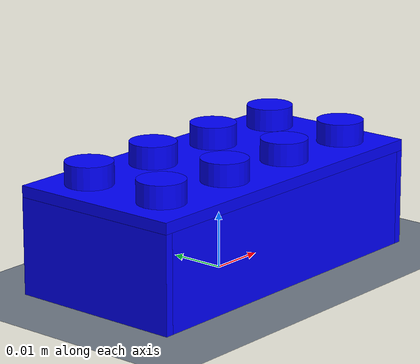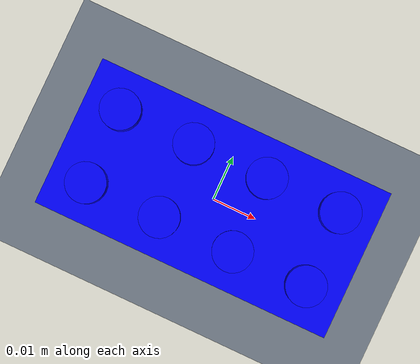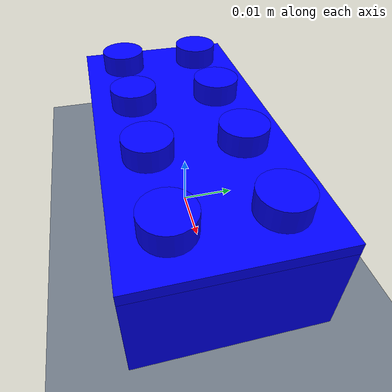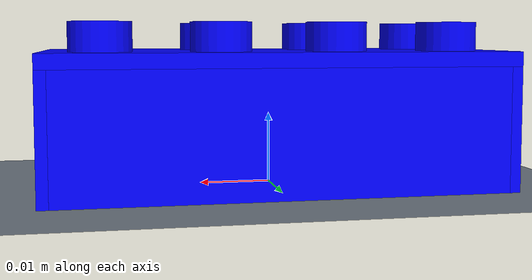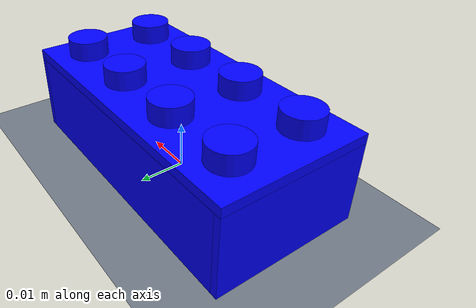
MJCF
<mujoco model="brick_4x2">
  <compiler angle="radian" autolimits="true" />
  <option timestep=".0005" integrator="implicitfast" cone="pyramidal" solver="Newton" iterations="100" />
  <worldbody>
    <geom name="floor" type="plane" size=".2 .2 .01" rgba=".44 .48 .53 1" friction="1 .005 .0001" priority="3" solref=".0011 1" solimp=".9999 .9999 .0001" />
    <body name="brick_4x2" quat="1.0000000000 0 0 0.0000000000" pos="0.000000 0.000000 0.018600">
      <freejoint />
      <geom type="mesh" pos="0 0 -0.0004000000000000002" solref=".001 1" solimp=".9999 .9999 .0001" friction="1 .005 .0001" priority="1" mesh="clutch_shell_brick_4x2_0" rgba="0 0 1 1" />
      <geom type="mesh" pos="-0.031149999999999997 0 -0.009999999999999998" solref=".001 1" solimp=".9999 .9999 .0001" friction="1 .005 .0001" priority="1" mesh="clutch_shell_brick_4x2_1" rgba="0 0 1 1" />
      <geom type="mesh" pos="0 -0.01515 -0.009999999999999998" solref=".001 1" solimp=".9999 .9999 .0001" friction="1 .005 .0001" priority="1" mesh="clutch_shell_brick_4x2_2" rgba="0 0 1 1" />
      <geom type="mesh" pos="0.031149999999999997 0 -0.009999999999999998" solref=".001 1" solimp=".9999 .9999 .0001" friction="1 .005 .0001" priority="1" mesh="clutch_shell_brick_4x2_3" rgba="0 0 1 1" />
      <geom type="mesh" pos="0 0.01515 -0.009999999999999998" solref=".001 1" solimp=".9999 .9999 .0001" friction="1 .005 .0001" priority="1" mesh="clutch_shell_brick_4x2_4" rgba="0 0 1 1" />
      <geom type="mesh" pos="-0.009449999999999998 0.0 -0.009999999999999998" solref="0.03 1.0" solimp=".9 .95 .001" friction="0.3 0.001 5e-05" priority="2" euler="0 0 0.0" name="clutch_brick_4x2_tube_5" mesh="clutch_tube" condim="6" rgba="0 0 1 1" />
      <geom type="mesh" pos="-0.009948589062051073 0.0025065764819913383 -0.009999999999999998" solref="0.03 1.0" solimp=".9 .95 .001" friction="0.3 0.001 5e-05" priority="2" euler="0 0 0.39269908169872414" name="clutch_brick_4x2_tube_6" mesh="clutch_tube" condim="6" rgba="0 0 1 1" />
      <geom type="mesh" pos="-0.011368450583228114 0.004631549416771886 -0.009999999999999998" solref="0.03 1.0" solimp=".9 .95 .001" friction="0.3 0.001 5e-05" priority="2" euler="0 0 0.7853981633974483" name="clutch_brick_4x2_tube_7" mesh="clutch_tube" condim="6" rgba="0 0 1 1" />
      <geom type="mesh" pos="-0.013493423518008661 0.006051410937948928 -0.009999999999999998" solref="0.03 1.0" solimp=".9 .95 .001" friction="0.3 0.001 5e-05" priority="2" euler="0 0 1.1780972450961724" name="clutch_brick_4x2_tube_8" mesh="clutch_tube" condim="6" rgba="0 0 1 1" />
      <geom type="mesh" pos="-0.016 0.00655 -0.009999999999999998" solref="0.03 1.0" solimp=".9 .95 .001" friction="0.3 0.001 5e-05" priority="2" euler="0 0 1.5707963267948966" name="clutch_brick_4x2_tube_9" mesh="clutch_tube" condim="6" rgba="0 0 1 1" />
      <geom type="mesh" pos="-0.01850657648199134 0.006051410937948928 -0.009999999999999998" solref="0.03 1.0" solimp=".9 .95 .001" friction="0.3 0.001 5e-05" priority="2" euler="0 0 1.9634954084936207" name="clutch_brick_4x2_tube_10" mesh="clutch_tube" condim="6" rgba="0 0 1 1" />
      <geom type="mesh" pos="-0.020631549416771887 0.0046315494167718865 -0.009999999999999998" solref="0.03 1.0" solimp=".9 .95 .001" friction="0.3 0.001 5e-05" priority="2" euler="0 0 2.356194490192345" name="clutch_brick_4x2_tube_11" mesh="clutch_tube" condim="6" rgba="0 0 1 1" />
      <geom type="mesh" pos="-0.022051410937948927 0.002506576481991339 -0.009999999999999998" solref="0.03 1.0" solimp=".9 .95 .001" friction="0.3 0.001 5e-05" priority="2" euler="0 0 2.748893571891069" name="clutch_brick_4x2_tube_12" mesh="clutch_tube" condim="6" rgba="0 0 1 1" />
      <geom type="mesh" pos="-0.02255 8.021436534415164e-19 -0.009999999999999998" solref="0.03 1.0" solimp=".9 .95 .001" friction="0.3 0.001 5e-05" priority="2" euler="0 0 3.141592653589793" name="clutch_brick_4x2_tube_13" mesh="clutch_tube" condim="6" rgba="0 0 1 1" />
      <geom type="mesh" pos="-0.022051410937948927 -0.002506576481991338 -0.009999999999999998" solref="0.03 1.0" solimp=".9 .95 .001" friction="0.3 0.001 5e-05" priority="2" euler="0 0 3.5342917352885173" name="clutch_brick_4x2_tube_14" mesh="clutch_tube" condim="6" rgba="0 0 1 1" />
      <geom type="mesh" pos="-0.020631549416771887 -0.004631549416771886 -0.009999999999999998" solref="0.03 1.0" solimp=".9 .95 .001" friction="0.3 0.001 5e-05" priority="2" euler="0 0 3.9269908169872414" name="clutch_brick_4x2_tube_15" mesh="clutch_tube" condim="6" rgba="0 0 1 1" />
      <geom type="mesh" pos="-0.018506576481991343 -0.006051410937948927 -0.009999999999999998" solref="0.03 1.0" solimp=".9 .95 .001" friction="0.3 0.001 5e-05" priority="2" euler="0 0 4.319689898685965" name="clutch_brick_4x2_tube_16" mesh="clutch_tube" condim="6" rgba="0 0 1 1" />
      <geom type="mesh" pos="-0.016 -0.00655 -0.009999999999999998" solref="0.03 1.0" solimp=".9 .95 .001" friction="0.3 0.001 5e-05" priority="2" euler="0 0 4.71238898038469" name="clutch_brick_4x2_tube_17" mesh="clutch_tube" condim="6" rgba="0 0 1 1" />
      <geom type="mesh" pos="-0.013493423518008661 -0.006051410937948928 -0.009999999999999998" solref="0.03 1.0" solimp=".9 .95 .001" friction="0.3 0.001 5e-05" priority="2" euler="0 0 5.105088062083414" name="clutch_brick_4x2_tube_18" mesh="clutch_tube" condim="6" rgba="0 0 1 1" />
      <geom type="mesh" pos="-0.011368450583228116 -0.004631549416771888 -0.009999999999999998" solref="0.03 1.0" solimp=".9 .95 .001" friction="0.3 0.001 5e-05" priority="2" euler="0 0 5.497787143782138" name="clutch_brick_4x2_tube_19" mesh="clutch_tube" condim="6" rgba="0 0 1 1" />
      <geom type="mesh" pos="-0.009948589062051073 -0.002506576481991342 -0.009999999999999998" solref="0.03 1.0" solimp=".9 .95 .001" friction="0.3 0.001 5e-05" priority="2" euler="0 0 5.890486225480862" name="clutch_brick_4x2_tube_20" mesh="clutch_tube" condim="6" rgba="0 0 1 1" />
      <geom type="mesh" pos="0.00655 0.0 -0.009999999999999998" solref="0.03 1.0" solimp=".9 .95 .001" friction="0.3 0.001 5e-05" priority="2" euler="0 0 0.0" name="clutch_brick_4x2_tube_21" mesh="clutch_tube" condim="6" rgba="0 0 1 1" />
      <geom type="mesh" pos="0.006051410937948928 0.0025065764819913383 -0.009999999999999998" solref="0.03 1.0" solimp=".9 .95 .001" friction="0.3 0.001 5e-05" priority="2" euler="0 0 0.39269908169872414" name="clutch_brick_4x2_tube_22" mesh="clutch_tube" condim="6" rgba="0 0 1 1" />
      <geom type="mesh" pos="0.0046315494167718865 0.004631549416771886 -0.009999999999999998" solref="0.03 1.0" solimp=".9 .95 .001" friction="0.3 0.001 5e-05" priority="2" euler="0 0 0.7853981633974483" name="clutch_brick_4x2_tube_23" mesh="clutch_tube" condim="6" rgba="0 0 1 1" />
      <geom type="mesh" pos="0.0025065764819913387 0.006051410937948928 -0.009999999999999998" solref="0.03 1.0" solimp=".9 .95 .001" friction="0.3 0.001 5e-05" priority="2" euler="0 0 1.1780972450961724" name="clutch_brick_4x2_tube_24" mesh="clutch_tube" condim="6" rgba="0 0 1 1" />
      <geom type="mesh" pos="4.010718267207582e-19 0.00655 -0.009999999999999998" solref="0.03 1.0" solimp=".9 .95 .001" friction="0.3 0.001 5e-05" priority="2" euler="0 0 1.5707963267948966" name="clutch_brick_4x2_tube_25" mesh="clutch_tube" condim="6" rgba="0 0 1 1" />
      <geom type="mesh" pos="-0.002506576481991338 0.006051410937948928 -0.009999999999999998" solref="0.03 1.0" solimp=".9 .95 .001" friction="0.3 0.001 5e-05" priority="2" euler="0 0 1.9634954084936207" name="clutch_brick_4x2_tube_26" mesh="clutch_tube" condim="6" rgba="0 0 1 1" />
      <geom type="mesh" pos="-0.004631549416771886 0.0046315494167718865 -0.009999999999999998" solref="0.03 1.0" solimp=".9 .95 .001" friction="0.3 0.001 5e-05" priority="2" euler="0 0 2.356194490192345" name="clutch_brick_4x2_tube_27" mesh="clutch_tube" condim="6" rgba="0 0 1 1" />
      <geom type="mesh" pos="-0.006051410937948928 0.002506576481991339 -0.009999999999999998" solref="0.03 1.0" solimp=".9 .95 .001" friction="0.3 0.001 5e-05" priority="2" euler="0 0 2.748893571891069" name="clutch_brick_4x2_tube_28" mesh="clutch_tube" condim="6" rgba="0 0 1 1" />
      <geom type="mesh" pos="-0.00655 8.021436534415164e-19 -0.009999999999999998" solref="0.03 1.0" solimp=".9 .95 .001" friction="0.3 0.001 5e-05" priority="2" euler="0 0 3.141592653589793" name="clutch_brick_4x2_tube_29" mesh="clutch_tube" condim="6" rgba="0 0 1 1" />
      <geom type="mesh" pos="-0.006051410937948929 -0.002506576481991338 -0.009999999999999998" solref="0.03 1.0" solimp=".9 .95 .001" friction="0.3 0.001 5e-05" priority="2" euler="0 0 3.5342917352885173" name="clutch_brick_4x2_tube_30" mesh="clutch_tube" condim="6" rgba="0 0 1 1" />
      <geom type="mesh" pos="-0.004631549416771888 -0.004631549416771886 -0.009999999999999998" solref="0.03 1.0" solimp=".9 .95 .001" friction="0.3 0.001 5e-05" priority="2" euler="0 0 3.9269908169872414" name="clutch_brick_4x2_tube_31" mesh="clutch_tube" condim="6" rgba="0 0 1 1" />
      <geom type="mesh" pos="-0.0025065764819913417 -0.006051410937948927 -0.009999999999999998" solref="0.03 1.0" solimp=".9 .95 .001" friction="0.3 0.001 5e-05" priority="2" euler="0 0 4.319689898685965" name="clutch_brick_4x2_tube_32" mesh="clutch_tube" condim="6" rgba="0 0 1 1" />
      <geom type="mesh" pos="-1.2032154801622745e-18 -0.00655 -0.009999999999999998" solref="0.03 1.0" solimp=".9 .95 .001" friction="0.3 0.001 5e-05" priority="2" euler="0 0 4.71238898038469" name="clutch_brick_4x2_tube_33" mesh="clutch_tube" condim="6" rgba="0 0 1 1" />
      <geom type="mesh" pos="0.0025065764819913396 -0.006051410937948928 -0.009999999999999998" solref="0.03 1.0" solimp=".9 .95 .001" friction="0.3 0.001 5e-05" priority="2" euler="0 0 5.105088062083414" name="clutch_brick_4x2_tube_34" mesh="clutch_tube" condim="6" rgba="0 0 1 1" />
      <geom type="mesh" pos="0.004631549416771885 -0.004631549416771888 -0.009999999999999998" solref="0.03 1.0" solimp=".9 .95 .001" friction="0.3 0.001 5e-05" priority="2" euler="0 0 5.497787143782138" name="clutch_brick_4x2_tube_35" mesh="clutch_tube" condim="6" rgba="0 0 1 1" />
      <geom type="mesh" pos="0.006051410937948927 -0.002506576481991342 -0.009999999999999998" solref="0.03 1.0" solimp=".9 .95 .001" friction="0.3 0.001 5e-05" priority="2" euler="0 0 5.890486225480862" name="clutch_brick_4x2_tube_36" mesh="clutch_tube" condim="6" rgba="0 0 1 1" />
      <geom type="mesh" pos="0.02255 0.0 -0.009999999999999998" solref="0.03 1.0" solimp=".9 .95 .001" friction="0.3 0.001 5e-05" priority="2" euler="0 0 0.0" name="clutch_brick_4x2_tube_37" mesh="clutch_tube" condim="6" rgba="0 0 1 1" />
      <geom type="mesh" pos="0.022051410937948927 0.0025065764819913383 -0.009999999999999998" solref="0.03 1.0" solimp=".9 .95 .001" friction="0.3 0.001 5e-05" priority="2" euler="0 0 0.39269908169872414" name="clutch_brick_4x2_tube_38" mesh="clutch_tube" condim="6" rgba="0 0 1 1" />
      <geom type="mesh" pos="0.020631549416771887 0.004631549416771886 -0.009999999999999998" solref="0.03 1.0" solimp=".9 .95 .001" friction="0.3 0.001 5e-05" priority="2" euler="0 0 0.7853981633974483" name="clutch_brick_4x2_tube_39" mesh="clutch_tube" condim="6" rgba="0 0 1 1" />
      <geom type="mesh" pos="0.01850657648199134 0.006051410937948928 -0.009999999999999998" solref="0.03 1.0" solimp=".9 .95 .001" friction="0.3 0.001 5e-05" priority="2" euler="0 0 1.1780972450961724" name="clutch_brick_4x2_tube_40" mesh="clutch_tube" condim="6" rgba="0 0 1 1" />
      <geom type="mesh" pos="0.016 0.00655 -0.009999999999999998" solref="0.03 1.0" solimp=".9 .95 .001" friction="0.3 0.001 5e-05" priority="2" euler="0 0 1.5707963267948966" name="clutch_brick_4x2_tube_41" mesh="clutch_tube" condim="6" rgba="0 0 1 1" />
      <geom type="mesh" pos="0.013493423518008663 0.006051410937948928 -0.009999999999999998" solref="0.03 1.0" solimp=".9 .95 .001" friction="0.3 0.001 5e-05" priority="2" euler="0 0 1.9634954084936207" name="clutch_brick_4x2_tube_42" mesh="clutch_tube" condim="6" rgba="0 0 1 1" />
      <geom type="mesh" pos="0.011368450583228114 0.0046315494167718865 -0.009999999999999998" solref="0.03 1.0" solimp=".9 .95 .001" friction="0.3 0.001 5e-05" priority="2" euler="0 0 2.356194490192345" name="clutch_brick_4x2_tube_43" mesh="clutch_tube" condim="6" rgba="0 0 1 1" />
      <geom type="mesh" pos="0.009948589062051073 0.002506576481991339 -0.009999999999999998" solref="0.03 1.0" solimp=".9 .95 .001" friction="0.3 0.001 5e-05" priority="2" euler="0 0 2.748893571891069" name="clutch_brick_4x2_tube_44" mesh="clutch_tube" condim="6" rgba="0 0 1 1" />
      <geom type="mesh" pos="0.009449999999999998 8.021436534415164e-19 -0.009999999999999998" solref="0.03 1.0" solimp=".9 .95 .001" friction="0.3 0.001 5e-05" priority="2" euler="0 0 3.141592653589793" name="clutch_brick_4x2_tube_45" mesh="clutch_tube" condim="6" rgba="0 0 1 1" />
      <geom type="mesh" pos="0.009948589062051072 -0.002506576481991338 -0.009999999999999998" solref="0.03 1.0" solimp=".9 .95 .001" friction="0.3 0.001 5e-05" priority="2" euler="0 0 3.5342917352885173" name="clutch_brick_4x2_tube_46" mesh="clutch_tube" condim="6" rgba="0 0 1 1" />
      <geom type="mesh" pos="0.011368450583228114 -0.004631549416771886 -0.009999999999999998" solref="0.03 1.0" solimp=".9 .95 .001" friction="0.3 0.001 5e-05" priority="2" euler="0 0 3.9269908169872414" name="clutch_brick_4x2_tube_47" mesh="clutch_tube" condim="6" rgba="0 0 1 1" />
      <geom type="mesh" pos="0.01349342351800866 -0.006051410937948927 -0.009999999999999998" solref="0.03 1.0" solimp=".9 .95 .001" friction="0.3 0.001 5e-05" priority="2" euler="0 0 4.319689898685965" name="clutch_brick_4x2_tube_48" mesh="clutch_tube" condim="6" rgba="0 0 1 1" />
      <geom type="mesh" pos="0.016 -0.00655 -0.009999999999999998" solref="0.03 1.0" solimp=".9 .95 .001" friction="0.3 0.001 5e-05" priority="2" euler="0 0 4.71238898038469" name="clutch_brick_4x2_tube_49" mesh="clutch_tube" condim="6" rgba="0 0 1 1" />
      <geom type="mesh" pos="0.01850657648199134 -0.006051410937948928 -0.009999999999999998" solref="0.03 1.0" solimp=".9 .95 .001" friction="0.3 0.001 5e-05" priority="2" euler="0 0 5.105088062083414" name="clutch_brick_4x2_tube_50" mesh="clutch_tube" condim="6" rgba="0 0 1 1" />
      <geom type="mesh" pos="0.020631549416771883 -0.004631549416771888 -0.009999999999999998" solref="0.03 1.0" solimp=".9 .95 .001" friction="0.3 0.001 5e-05" priority="2" euler="0 0 5.497787143782138" name="clutch_brick_4x2_tube_51" mesh="clutch_tube" condim="6" rgba="0 0 1 1" />
      <geom type="mesh" pos="0.022051410937948927 -0.002506576481991342 -0.009999999999999998" solref="0.03 1.0" solimp=".9 .95 .001" friction="0.3 0.001 5e-05" priority="2" euler="0 0 5.890486225480862" name="clutch_brick_4x2_tube_52" mesh="clutch_tube" condim="6" rgba="0 0 1 1" />
      <geom type="cylinder" size="0.0042 0.002" pos="-0.024 -0.008 0.0026" solref=".001 1" solimp=".9999 .9999 .0001" friction="1 .005 .0001" priority="1" rgba="0 0 1 1" />
      <geom type="cylinder" size="0.0042 0.002" pos="-0.024 0.008 0.0026" solref=".001 1" solimp=".9999 .9999 .0001" friction="1 .005 .0001" priority="1" rgba="0 0 1 1" />
      <geom type="cylinder" size="0.0042 0.002" pos="-0.008 -0.008 0.0026" solref=".001 1" solimp=".9999 .9999 .0001" friction="1 .005 .0001" priority="1" rgba="0 0 1 1" />
      <geom type="cylinder" size="0.0042 0.002" pos="-0.008 0.008 0.0026" solref=".001 1" solimp=".9999 .9999 .0001" friction="1 .005 .0001" priority="1" rgba="0 0 1 1" />
      <geom type="cylinder" size="0.0042 0.002" pos="0.008 -0.008 0.0026" solref=".001 1" solimp=".9999 .9999 .0001" friction="1 .005 .0001" priority="1" rgba="0 0 1 1" />
      <geom type="cylinder" size="0.0042 0.002" pos="0.008 0.008 0.0026" solref=".001 1" solimp=".9999 .9999 .0001" friction="1 .005 .0001" priority="1" rgba="0 0 1 1" />
      <geom type="cylinder" size="0.0042 0.002" pos="0.024 -0.008 0.0026" solref=".001 1" solimp=".9999 .9999 .0001" friction="1 .005 .0001" priority="1" rgba="0 0 1 1" />
      <geom type="cylinder" size="0.0042 0.002" pos="0.024 0.008 0.0026" solref=".001 1" solimp=".9999 .9999 .0001" friction="1 .005 .0001" priority="1" rgba="0 0 1 1" />
      <inertial pos="0 0 -0.009" mass="0.022" diaginertia="2.5297799999999998e-06 8.138313333333333e-06 9.316413333333331e-06" />
      <geom type="mesh" mesh="clutch_rib" pos="-0.024 -0.01335 -.0176" euler="0 0 3.141592653589793" condim="6" solref="0.03 1.0" solimp=".9 .95 .001" priority="2" friction="0.3 0.001 5e-05" rgba="0 0 1 1" />
      <geom type="mesh" mesh="clutch_rib" pos="-0.008 -0.01335 -.0176" euler="0 0 3.141592653589793" condim="6" solref="0.03 1.0" solimp=".9 .95 .001" priority="2" friction="0.3 0.001 5e-05" rgba="0 0 1 1" />
      <geom type="mesh" mesh="clutch_rib" pos="0.008 -0.01335 -.0176" euler="0 0 3.141592653589793" condim="6" solref="0.03 1.0" solimp=".9 .95 .001" priority="2" friction="0.3 0.001 5e-05" rgba="0 0 1 1" />
      <geom type="mesh" mesh="clutch_rib" pos="0.024 -0.01335 -.0176" euler="0 0 3.141592653589793" condim="6" solref="0.03 1.0" solimp=".9 .95 .001" priority="2" friction="0.3 0.001 5e-05" rgba="0 0 1 1" />
      <geom type="mesh" mesh="clutch_rib" pos="-0.02935 -0.008 -.0176" euler="0 0 1.5707963267948966" condim="6" solref="0.03 1.0" solimp=".9 .95 .001" priority="2" friction="0.3 0.001 5e-05" rgba="0 0 1 1" />
      <geom type="mesh" mesh="clutch_rib" pos="-0.02935 0.008 -.0176" euler="0 0 1.5707963267948966" condim="6" solref="0.03 1.0" solimp=".9 .95 .001" priority="2" friction="0.3 0.001 5e-05" rgba="0 0 1 1" />
      <geom type="mesh" mesh="clutch_rib" pos="-0.024 0.01335 -.0176" euler="0 0 0" condim="6" solref="0.03 1.0" solimp=".9 .95 .001" priority="2" friction="0.3 0.001 5e-05" rgba="0 0 1 1" />
      <geom type="mesh" mesh="clutch_rib" pos="-0.008 0.01335 -.0176" euler="0 0 0" condim="6" solref="0.03 1.0" solimp=".9 .95 .001" priority="2" friction="0.3 0.001 5e-05" rgba="0 0 1 1" />
      <geom type="mesh" mesh="clutch_rib" pos="0.008 0.01335 -.0176" euler="0 0 0" condim="6" solref="0.03 1.0" solimp=".9 .95 .001" priority="2" friction="0.3 0.001 5e-05" rgba="0 0 1 1" />
      <geom type="mesh" mesh="clutch_rib" pos="0.024 0.01335 -.0176" euler="0 0 0" condim="6" solref="0.03 1.0" solimp=".9 .95 .001" priority="2" friction="0.3 0.001 5e-05" rgba="0 0 1 1" />
      <geom type="mesh" mesh="clutch_rib" pos="0.02935 -0.008 -.0176" euler="0 0 -1.5707963267948966" condim="6" solref="0.03 1.0" solimp=".9 .95 .001" priority="2" friction="0.3 0.001 5e-05" rgba="0 0 1 1" />
      <geom type="mesh" mesh="clutch_rib" pos="0.02935 0.008 -.0176" euler="0 0 -1.5707963267948966" condim="6" solref="0.03 1.0" solimp=".9 .95 .001" priority="2" friction="0.3 0.001 5e-05" rgba="0 0 1 1" />
    </body>
  </worldbody>
  <asset>
    <mesh name="clutch_tube" vertex="-0.00105 -0.00130287600633676 -0.0086 -0.00105 0.00130287600633676 -0.0086 0.00014999999999999996 -0.00130287600633676 -0.0086 0.00014999999999999996 0.00130287600633676 -0.0086 -0.0006 -0.00130287600633676 -0.0066 -0.0006 0.00130287600633676 -0.0066 0.0006 -0.00130287600633676 -0.0066 0.0006 0.00130287600633676 -0.0066 -0.0006 -0.00130287600633676 0.0086 -0.0006 0.00130287600633676 0.0086 0.0006 -0.00130287600633676 0.0086 0.0006 0.00130287600633676 0.0086" />
    <mesh name="clutch_rib" vertex="-0.001 0.0011 -0.001 -0.001 0.0012 -0.001 0.001 0.0011 -0.001 0.001 0.0012 -0.001 -0.001 -0.0012 0.001 -0.001 0.0012 0.001 0.001 -0.0012 0.001 0.001 0.0012 0.001 -0.001 -0.0012 0.0162 -0.001 0.0012 0.0162 0.001 -0.0012 0.0162 0.001 0.0012 0.0162" />
    <mesh name="clutch_shell_brick_4x2_0" vertex="-0.0319 -0.0159 -0.001 -0.0319 -0.0159 0.001 -0.0319 0.0159 -0.001 -0.0319 0.0159 0.001 0.0319 -0.0159 -0.001 0.0319 -0.0159 0.001 0.0319 0.0159 -0.001 0.0319 0.0159 0.001" />
    <mesh name="clutch_shell_brick_4x2_1" vertex="-0.00075 -0.0159 -0.0086 -0.00075 -0.0159 0.0086 -0.00075 0.0159 -0.0086 -0.00075 0.0159 0.0086 0.00075 -0.0159 -0.0086 0.00075 -0.0159 0.0086 0.00075 0.0159 -0.0086 0.00075 0.0159 0.0086" />
    <mesh name="clutch_shell_brick_4x2_2" vertex="-0.030399999999999996 -0.00075 -0.0086 -0.030399999999999996 -0.00075 0.0086 -0.030399999999999996 0.00075 -0.0086 -0.030399999999999996 0.00075 0.0086 0.030399999999999996 -0.00075 -0.0086 0.030399999999999996 -0.00075 0.0086 0.030399999999999996 0.00075 -0.0086 0.030399999999999996 0.00075 0.0086" />
    <mesh name="clutch_shell_brick_4x2_3" vertex="-0.00075 -0.0159 -0.0086 -0.00075 -0.0159 0.0086 -0.00075 0.0159 -0.0086 -0.00075 0.0159 0.0086 0.00075 -0.0159 -0.0086 0.00075 -0.0159 0.0086 0.00075 0.0159 -0.0086 0.00075 0.0159 0.0086" />
    <mesh name="clutch_shell_brick_4x2_4" vertex="-0.030399999999999996 -0.00075 -0.0086 -0.030399999999999996 -0.00075 0.0086 -0.030399999999999996 0.00075 -0.0086 -0.030399999999999996 0.00075 0.0086 0.030399999999999996 -0.00075 -0.0086 0.030399999999999996 -0.00075 0.0086 0.030399999999999996 0.00075 -0.0086 0.030399999999999996 0.00075 0.0086" />
  </asset>
</mujoco>
